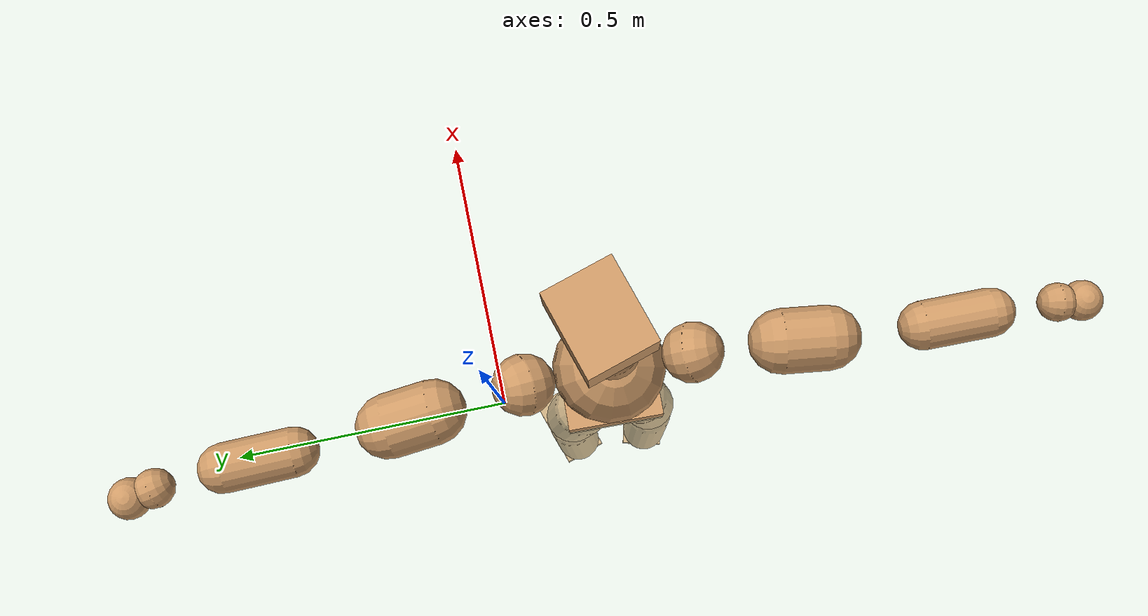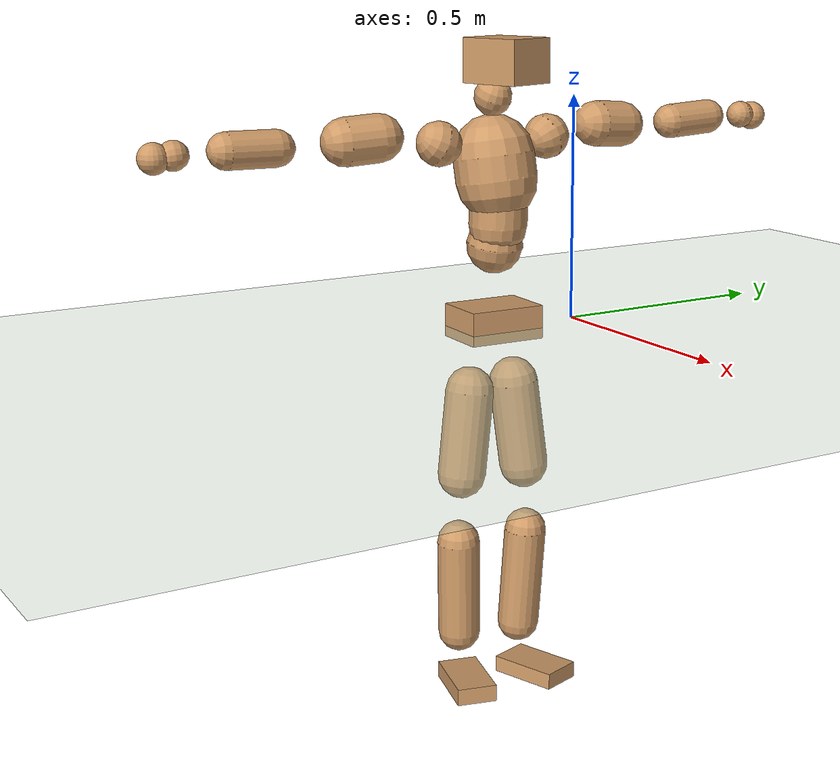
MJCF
<mujoco model="humanoid">
  <compiler coordinate="local" angle="radian"/>
  <default>
    <joint damping="0.0" armature="0.01" stiffness="0.0" limited="true"/>
    <geom conaffinity="1" condim="3" contype="7" margin="0.001" rgba="0.8 0.6 .4 1"/>
  </default>
  <asset>
    <texture type="skybox" builtin="gradient" rgb1=".4 .5 .6" rgb2="0 0 0" width="100" height="100"/>
    <texture builtin="flat" height="1278" mark="cross" markrgb="1 1 1" name="texgeom" random="0.01" rgb1="0.8 0.6 0.4" rgb2="0.8 0.6 0.4" type="cube" width="127"/>
    <texture builtin="checker" height="100" name="texplane" rgb1="0 0 0" rgb2="0.8 0.8 0.8" type="2d" width="100"/>
    <material name="MatPlane" reflectance="0.5" shininess="1" specular="1" texrepeat="60 60" texture="texplane"/>
    <material name="geom" texture="texgeom" texuniform="true"/>
  </asset>
  <worldbody>
    <light cutoff="100" diffuse="1 1 1" dir="-0 0 -1.3" directional="true" exponent="1" pos="0 0 1.3" specular=".1 .1 .1"/>
    <geom conaffinity="1" condim="3" name="floor" pos="0 0 0" rgba="0.8 0.9 0.8 1" size="100 100 .2" type="plane" material="MatPlane"/>
    <body name="Pelvis" pos="-0.0049 -0.1975 0.0191">
      <freejoint name="Pelvis"/>
      <geom type="box" contype="1" conaffinity="1" density="5359.375177" pos="-0.0111 0.0003 -0.0075" size="0.064 0.0878 0.0371" quat="0.9999 0.0000 0.0000 -0.0133" name="Pelvis"/>
      <body name="L_Hip" pos="-0.0216 0.0468 -0.0708">
        <joint name="L_Hip_x" type="hinge" pos="0 0 0" axis="1 0 0" stiffness="1600" damping="160" armature="0.02" range="-180.0000 180.0000"/>
        <joint name="L_Hip_y" type="hinge" pos="0 0 0" axis="0 1 0" stiffness="1600" damping="160" armature="0.02" range="-180.0000 180.0000"/>
        <joint name="L_Hip_z" type="hinge" pos="0 0 0" axis="0 0 1" stiffness="1600" damping="160" armature="0.02" range="-180.0000 180.0000"/>
        <geom type="capsule" contype="1" conaffinity="1" density="2040.816327" size="0.0549" fromto="0.0028 0.0103 -0.0842 0.0095 0.0343 -0.2818" name="L_Hip"/>
        <body name="L_Knee" pos="0.0123 0.0446 -0.3661">
          <joint name="L_Knee_x" type="hinge" pos="0 0 0" axis="1 0 0" stiffness="1600" damping="160" armature="0.02" range="-180.0000 180.0000"/>
          <joint name="L_Knee_y" type="hinge" pos="0 0 0" axis="0 1 0" stiffness="1600" damping="160" armature="0.02" range="-180.0000 180.0000"/>
          <joint name="L_Knee_z" type="hinge" pos="0 0 0" axis="0 0 1" stiffness="1600" damping="160" armature="0.02" range="-180.0000 180.0000"/>
          <geom type="capsule" contype="1" conaffinity="1" density="1234.567901" size="0.0478" fromto="-0.0060 -0.0023 -0.0776 -0.0241 -0.0092 -0.3110" name="L_Knee"/>
          <body name="L_Ankle" pos="-0.0301 -0.0115 -0.3885">
            <joint name="L_Ankle_x" type="hinge" pos="0 0 0" axis="1 0 0" stiffness="1600" damping="160" armature="0.02" range="-180.0000 180.0000"/>
            <joint name="L_Ankle_y" type="hinge" pos="0 0 0" axis="0 1 0" stiffness="1600" damping="160" armature="0.02" range="-180.0000 180.0000"/>
            <joint name="L_Ankle_z" type="hinge" pos="0 0 0" axis="0 0 1" stiffness="1600" damping="160" armature="0.02" range="-180.0000 180.0000"/>
            <geom type="box" contype="1" conaffinity="1" density="999.999992" pos="0.0551 0.0183 -0.0269" size="0.0805 0.0467 0.0185" quat="0.9872 0.0000 0.0000 0.1592" name="L_Ankle"/>
            <body name="L_Toe" pos="0.1102 0.0365 -0.0538">
              <joint name="L_Toe_x" type="hinge" pos="0 0 0" axis="1 0 0" stiffness="1000" damping="100" armature="0.02" range="-180.0000 180.0000"/>
              <joint name="L_Toe_y" type="hinge" pos="0 0 0" axis="0 1 0" stiffness="1000" damping="100" armature="0.02" range="-180.0000 180.0000"/>
              <joint name="L_Toe_z" type="hinge" pos="0 0 0" axis="0 0 1" stiffness="1000" damping="100" armature="0.02" range="-180.0000 180.0000"/>
              <geom type="box" contype="1" conaffinity="1" density="7972719.203645" pos="0.0000 0.0000 0.0262" size="0.001 0.0024 0.0009" quat="0.9864 0.0000 0.0000 0.1645" name="L_Toe"/>
            </body>
          </body>
        </body>
      </body>
      <body name="R_Hip" pos="-0.0185 -0.0487 -0.0782">
        <joint name="R_Hip_x" type="hinge" pos="0 0 0" axis="1 0 0" stiffness="1600" damping="160" armature="0.02" range="-180.0000 180.0000"/>
        <joint name="R_Hip_y" type="hinge" pos="0 0 0" axis="0 1 0" stiffness="1600" damping="160" armature="0.02" range="-180.0000 180.0000"/>
        <joint name="R_Hip_z" type="hinge" pos="0 0 0" axis="0 0 1" stiffness="1600" damping="160" armature="0.02" range="-180.0000 180.0000"/>
        <geom type="capsule" contype="1" conaffinity="1" density="2040.816327" size="0.0539" fromto="-0.0001 -0.0093 -0.0834 -0.0003 -0.0306 -0.2757" name="R_Hip"/>
        <body name="R_Knee" pos="-0.0004 -0.0399 -0.3591">
          <joint name="R_Knee_x" type="hinge" pos="0 0 0" axis="1 0 0" stiffness="1600" damping="160" armature="0.02" range="-180.0000 180.0000"/>
          <joint name="R_Knee_y" type="hinge" pos="0 0 0" axis="0 1 0" stiffness="1600" damping="160" armature="0.02" range="-180.0000 180.0000"/>
          <joint name="R_Knee_z" type="hinge" pos="0 0 0" axis="0 0 1" stiffness="1600" damping="160" armature="0.02" range="-180.0000 180.0000"/>
          <geom type="capsule" contype="1" conaffinity="1" density="1234.567901" size="0.0481" fromto="-0.0055 0.0035 -0.0779 -0.0216 0.0138 -0.3028" name="R_Knee"/>
          <body name="R_Ankle" pos="-0.0271 0.0173 -0.3806">
            <joint name="R_Ankle_x" type="hinge" pos="0 0 0" axis="1 0 0" stiffness="1600" damping="160" armature="0.02" range="-180.0000 180.0000"/>
            <joint name="R_Ankle_y" type="hinge" pos="0 0 0" axis="0 1 0" stiffness="1600" damping="160" armature="0.02" range="-180.0000 180.0000"/>
            <joint name="R_Ankle_z" type="hinge" pos="0 0 0" axis="0 0 1" stiffness="1600" damping="160" armature="0.02" range="-180.0000 180.0000"/>
            <geom type="box" contype="1" conaffinity="1" density="999.999948" pos="0.0586 -0.0145 -0.0282" size="0.0814 0.0452 0.0192" quat="0.9927 0.0000 0.0000 -0.1208" name="R_Ankle"/>
            <body name="R_Toe" pos="0.1172 -0.029 -0.0564">
              <joint name="R_Toe_x" type="hinge" pos="0 0 0" axis="1 0 0" stiffness="1000" damping="100" armature="0.02" range="-180.0000 180.0000"/>
              <joint name="R_Toe_y" type="hinge" pos="0 0 0" axis="0 1 0" stiffness="1000" damping="100" armature="0.02" range="-180.0000 180.0000"/>
              <joint name="R_Toe_z" type="hinge" pos="0 0 0" axis="0 0 1" stiffness="1000" damping="100" armature="0.02" range="-180.0000 180.0000"/>
              <geom type="box" contype="1" conaffinity="1" density="8639537.291052" pos="0.0000 0.0000 0.0293" size="0.0009 0.0023 0.001" quat="0.9938 0.0000 0.0000 -0.1110" name="R_Toe"/>
            </body>
          </body>
        </body>
      </body>
      <body name="Torso" pos="-0.0265 0.0037 0.1037">
        <joint name="Torso_x" type="hinge" pos="0 0 0" axis="1 0 0" stiffness="2000" damping="200" armature="0.02" range="-180.0000 180.0000"/>
        <joint name="Torso_y" type="hinge" pos="0 0 0" axis="0 1 0" stiffness="2000" damping="200" armature="0.02" range="-180.0000 180.0000"/>
        <joint name="Torso_z" type="hinge" pos="0 0 0" axis="0 0 1" stiffness="2000" damping="200" armature="0.02" range="-180.0000 180.0000"/>
        <geom type="capsule" contype="1" conaffinity="1" density="2040.816327" size="0.0625" fromto="0.0114 0.0017 0.0614 0.0108 0.0016 0.0581" name="Torso"/>
        <body name="Spine" pos="0.0222 0.0034 0.1195">
          <joint name="Spine_x" type="hinge" pos="0 0 0" axis="1 0 0" stiffness="2000" damping="200" armature="0.02" range="-180.0000 180.0000"/>
          <joint name="Spine_y" type="hinge" pos="0 0 0" axis="0 1 0" stiffness="2000" damping="200" armature="0.02" range="-180.0000 180.0000"/>
          <joint name="Spine_z" type="hinge" pos="0 0 0" axis="0 0 1" stiffness="2000" damping="200" armature="0.02" range="-180.0000 180.0000"/>
          <geom type="capsule" contype="1" conaffinity="1" density="2040.816327" size="0.0644" fromto="0.0030 -0.0000 0.0644 -0.0008 0.0000 -0.0168" name="Spine"/>
          <body name="Chest" pos="0.0022 0 0.0475">
            <joint name="Chest_x" type="hinge" pos="0 0 0" axis="1 0 0" stiffness="2000" damping="200" armature="0.02" range="-180.0000 180.0000"/>
            <joint name="Chest_y" type="hinge" pos="0 0 0" axis="0 1 0" stiffness="2000" damping="200" armature="0.02" range="-180.0000 180.0000"/>
            <joint name="Chest_z" type="hinge" pos="0 0 0" axis="0 0 1" stiffness="2000" damping="200" armature="0.02" range="-180.0000 180.0000"/>
            <geom type="capsule" contype="1" conaffinity="1" density="2040.816327" size="0.0895" fromto="-0.0117 -0.0061 0.0885 -0.0046 -0.0024 0.0345" name="Chest"/>
            <body name="Neck" pos="-0.0249 -0.0153 0.1765">
              <joint name="Neck_x" type="hinge" pos="0 0 0" axis="1 0 0" stiffness="1000" damping="100" armature="0.02" range="-180.0000 180.0000"/>
              <joint name="Neck_y" type="hinge" pos="0 0 0" axis="0 1 0" stiffness="1000" damping="100" armature="0.02" range="-180.0000 180.0000"/>
              <joint name="Neck_z" type="hinge" pos="0 0 0" axis="0 0 1" stiffness="1000" damping="100" armature="0.02" range="-180.0000 180.0000"/>
              <geom type="capsule" contype="1" conaffinity="1" density="1000" size="0.0411" fromto="0.0174 0.0048 0.0375 0.0182 0.0050 0.0393" name="Neck"/>
              <body name="Head" pos="0.0357 0.0098 0.0767">
                <joint name="Head_x" type="hinge" pos="0 0 0" axis="1 0 0" stiffness="1000" damping="100" armature="0.02" range="-180.0000 180.0000"/>
                <joint name="Head_y" type="hinge" pos="0 0 0" axis="0 1 0" stiffness="1000" damping="100" armature="0.02" range="-180.0000 180.0000"/>
                <joint name="Head_z" type="hinge" pos="0 0 0" axis="0 0 1" stiffness="1000" damping="100" armature="0.02" range="-180.0000 180.0000"/>
                <geom type="box" contype="1" conaffinity="1" density="2250.000043" pos="0.0188 0.0059 0.0394" size="0.0716 0.0587 0.0477" quat="0.9885 0.0000 0.0000 0.1512" name="Head"/>
              </body>
            </body>
            <body name="L_Thorax" pos="-0.0084 0.0715 0.0973">
              <joint name="L_Thorax_x" type="hinge" pos="0 0 0" axis="1 0 0" stiffness="1000" damping="100" armature="0.02" range="-180.0000 180.0000"/>
              <joint name="L_Thorax_y" type="hinge" pos="0 0 0" axis="0 1 0" stiffness="1000" damping="100" armature="0.02" range="-180.0000 180.0000"/>
              <joint name="L_Thorax_z" type="hinge" pos="0 0 0" axis="0 0 1" stiffness="1000" damping="100" armature="0.02" range="-180.0000 180.0000"/>
              <geom type="capsule" contype="1" conaffinity="1" density="1000" size="0.0494" fromto="-0.0079 0.0611 0.0233 -0.0081 0.0630 0.0240" name="L_Thorax"/>
              <body name="L_Shoulder" pos="-0.0159 0.1241 0.0473">
                <joint name="L_Shoulder_x" type="hinge" pos="0 0 0" axis="1 0 0" stiffness="1000" damping="100" armature="0.02" range="-720.0000 720.0000"/>
                <joint name="L_Shoulder_y" type="hinge" pos="0 0 0" axis="0 1 0" stiffness="1000" damping="100" armature="0.02" range="-720.0000 720.0000"/>
                <joint name="L_Shoulder_z" type="hinge" pos="0 0 0" axis="0 0 1" stiffness="1000" damping="100" armature="0.02" range="-720.0000 720.0000"/>
                <geom type="capsule" contype="1" conaffinity="1" density="1000" size="0.0514" fromto="-0.0075 0.0809 -0.0057 -0.0143 0.1540 -0.0108" name="L_Shoulder"/>
                <body name="L_Elbow" pos="-0.0218 0.2349 -0.0165">
                  <joint name="L_Elbow_x" type="hinge" pos="0 0 0" axis="1 0 0" stiffness="1000" damping="100" armature="0.02" range="-720.0000 720.0000"/>
                  <joint name="L_Elbow_y" type="hinge" pos="0 0 0" axis="0 1 0" stiffness="1000" damping="100" armature="0.02" range="-720.0000 720.0000"/>
                  <joint name="L_Elbow_z" type="hinge" pos="0 0 0" axis="0 0 1" stiffness="1000" damping="100" armature="0.02" range="-720.0000 720.0000"/>
                  <geom type="capsule" contype="1" conaffinity="1" density="1000" size="0.0393" fromto="-0.0019 0.0692 0.0031 -0.0049 0.1787 0.0081" name="L_Elbow"/>
                  <body name="L_Wrist" pos="-0.0068 0.2479 0.0112">
                    <joint name="L_Wrist_x" type="hinge" pos="0 0 0" axis="1 0 0" stiffness="600" damping="60" armature="0.02" range="-180.0000 180.0000"/>
                    <joint name="L_Wrist_y" type="hinge" pos="0 0 0" axis="0 1 0" stiffness="600" damping="60" armature="0.02" range="-180.0000 180.0000"/>
                    <joint name="L_Wrist_z" type="hinge" pos="0 0 0" axis="0 0 1" stiffness="600" damping="60" armature="0.02" range="-180.0000 180.0000"/>
                    <geom type="capsule" contype="1" conaffinity="1" density="1000" size="0.0311" fromto="-0.0070 0.0392 -0.0049 -0.0074 0.0411 -0.0051" name="L_Wrist"/>
                    <body name="L_Hand" pos="-0.0144 0.0803 -0.01">
                      <joint name="L_Hand_x" type="hinge" pos="0 0 0" axis="1 0 0" stiffness="600" damping="60" armature="0.02" range="-180.0000 180.0000"/>
                      <joint name="L_Hand_y" type="hinge" pos="0 0 0" axis="0 1 0" stiffness="600" damping="60" armature="0.02" range="-180.0000 180.0000"/>
                      <joint name="L_Hand_z" type="hinge" pos="0 0 0" axis="0 0 1" stiffness="600" damping="60" armature="0.02" range="-180.0000 180.0000"/>
                      <geom type="sphere" contype="1" conaffinity="1" density="1000" size="0.0328" pos="0.0000 0.0000 0.0000" name="L_Hand"/>
                    </body>
                  </body>
                </body>
              </body>
            </body>
            <body name="R_Thorax" pos="-0.0156 -0.0817 0.0952">
              <joint name="R_Thorax_x" type="hinge" pos="0 0 0" axis="1 0 0" stiffness="1000" damping="100" armature="0.02" range="-180.0000 180.0000"/>
              <joint name="R_Thorax_y" type="hinge" pos="0 0 0" axis="0 1 0" stiffness="1000" damping="100" armature="0.02" range="-180.0000 180.0000"/>
              <joint name="R_Thorax_z" type="hinge" pos="0 0 0" axis="0 0 1" stiffness="1000" damping="100" armature="0.02" range="-180.0000 180.0000"/>
              <geom type="capsule" contype="1" conaffinity="1" density="1000" size="0.0488" fromto="-0.0037 -0.0545 0.0242 -0.0038 -0.0563 0.0250" name="R_Thorax"/>
              <body name="R_Shoulder" pos="-0.0075 -0.1107 0.0493">
                <joint name="R_Shoulder_x" type="hinge" pos="0 0 0" axis="1 0 0" stiffness="1000" damping="100" armature="0.02" range="-720.0000 720.0000"/>
                <joint name="R_Shoulder_y" type="hinge" pos="0 0 0" axis="0 1 0" stiffness="1000" damping="100" armature="0.02" range="-720.0000 720.0000"/>
                <joint name="R_Shoulder_z" type="hinge" pos="0 0 0" axis="0 0 1" stiffness="1000" damping="100" armature="0.02" range="-720.0000 720.0000"/>
                <geom type="capsule" contype="1" conaffinity="1" density="1000" size="0.0516" fromto="-0.0096 -0.0809 -0.0054 -0.0185 -0.1561 -0.0104" name="R_Shoulder"/>
                <body name="R_Elbow" pos="-0.0281 -0.237 -0.0158">
                  <joint name="R_Elbow_x" type="hinge" pos="0 0 0" axis="1 0 0" stiffness="1000" damping="100" armature="0.02" range="-720.0000 720.0000"/>
                  <joint name="R_Elbow_y" type="hinge" pos="0 0 0" axis="0 1 0" stiffness="1000" damping="100" armature="0.02" range="-720.0000 720.0000"/>
                  <joint name="R_Elbow_z" type="hinge" pos="0 0 0" axis="0 0 1" stiffness="1000" damping="100" armature="0.02" range="-720.0000 720.0000"/>
                  <geom type="capsule" contype="1" conaffinity="1" density="1000" size="0.0392" fromto="-0.0008 -0.0692 0.0009 -0.0020 -0.1777 0.0022" name="R_Elbow"/>
                  <body name="R_Wrist" pos="-0.0027 -0.2468 0.0031">
                    <joint name="R_Wrist_x" type="hinge" pos="0 0 0" axis="1 0 0" stiffness="600" damping="60" armature="0.02" range="-180.0000 180.0000"/>
                    <joint name="R_Wrist_y" type="hinge" pos="0 0 0" axis="0 1 0" stiffness="600" damping="60" armature="0.02" range="-180.0000 180.0000"/>
                    <joint name="R_Wrist_z" type="hinge" pos="0 0 0" axis="0 0 1" stiffness="600" damping="60" armature="0.02" range="-180.0000 180.0000"/>
                    <geom type="capsule" contype="1" conaffinity="1" density="1000" size="0.0308" fromto="-0.0046 -0.0389 -0.0038 -0.0049 -0.0409 -0.0040" name="R_Wrist"/>
                    <body name="R_Hand" pos="-0.0095 -0.0798 -0.0078">
                      <joint name="R_Hand_x" type="hinge" pos="0 0 0" axis="1 0 0" stiffness="600" damping="60" armature="0.02" range="-180.0000 180.0000"/>
                      <joint name="R_Hand_y" type="hinge" pos="0 0 0" axis="0 1 0" stiffness="600" damping="60" armature="0.02" range="-180.0000 180.0000"/>
                      <joint name="R_Hand_z" type="hinge" pos="0 0 0" axis="0 0 1" stiffness="600" damping="60" armature="0.02" range="-180.0000 180.0000"/>
                      <geom type="sphere" contype="1" conaffinity="1" density="1000" size="0.0323" pos="0.0000 0.0000 0.0000" name="R_Hand"/>
                    </body>
                  </body>
                </body>
              </body>
            </body>
          </body>
        </body>
      </body>
    </body>
  </worldbody>
  <actuator>
    <motor name="L_Hip_x" joint="L_Hip_x" gear="500"/>
    <motor name="L_Hip_y" joint="L_Hip_y" gear="500"/>
    <motor name="L_Hip_z" joint="L_Hip_z" gear="500"/>
    <motor name="L_Knee_x" joint="L_Knee_x" gear="500"/>
    <motor name="L_Knee_y" joint="L_Knee_y" gear="500"/>
    <motor name="L_Knee_z" joint="L_Knee_z" gear="500"/>
    <motor name="L_Ankle_x" joint="L_Ankle_x" gear="500"/>
    <motor name="L_Ankle_y" joint="L_Ankle_y" gear="500"/>
    <motor name="L_Ankle_z" joint="L_Ankle_z" gear="500"/>
    <motor name="L_Toe_x" joint="L_Toe_x" gear="500"/>
    <motor name="L_Toe_y" joint="L_Toe_y" gear="500"/>
    <motor name="L_Toe_z" joint="L_Toe_z" gear="500"/>
    <motor name="R_Hip_x" joint="R_Hip_x" gear="500"/>
    <motor name="R_Hip_y" joint="R_Hip_y" gear="500"/>
    <motor name="R_Hip_z" joint="R_Hip_z" gear="500"/>
    <motor name="R_Knee_x" joint="R_Knee_x" gear="500"/>
    <motor name="R_Knee_y" joint="R_Knee_y" gear="500"/>
    <motor name="R_Knee_z" joint="R_Knee_z" gear="500"/>
    <motor name="R_Ankle_x" joint="R_Ankle_x" gear="500"/>
    <motor name="R_Ankle_y" joint="R_Ankle_y" gear="500"/>
    <motor name="R_Ankle_z" joint="R_Ankle_z" gear="500"/>
    <motor name="R_Toe_x" joint="R_Toe_x" gear="500"/>
    <motor name="R_Toe_y" joint="R_Toe_y" gear="500"/>
    <motor name="R_Toe_z" joint="R_Toe_z" gear="500"/>
    <motor name="Torso_x" joint="Torso_x" gear="500"/>
    <motor name="Torso_y" joint="Torso_y" gear="500"/>
    <motor name="Torso_z" joint="Torso_z" gear="500"/>
    <motor name="Spine_x" joint="Spine_x" gear="500"/>
    <motor name="Spine_y" joint="Spine_y" gear="500"/>
    <motor name="Spine_z" joint="Spine_z" gear="500"/>
    <motor name="Chest_x" joint="Chest_x" gear="500"/>
    <motor name="Chest_y" joint="Chest_y" gear="500"/>
    <motor name="Chest_z" joint="Chest_z" gear="500"/>
    <motor name="Neck_x" joint="Neck_x" gear="500"/>
    <motor name="Neck_y" joint="Neck_y" gear="500"/>
    <motor name="Neck_z" joint="Neck_z" gear="500"/>
    <motor name="Head_x" joint="Head_x" gear="500"/>
    <motor name="Head_y" joint="Head_y" gear="500"/>
    <motor name="Head_z" joint="Head_z" gear="500"/>
    <motor name="L_Thorax_x" joint="L_Thorax_x" gear="500"/>
    <motor name="L_Thorax_y" joint="L_Thorax_y" gear="500"/>
    <motor name="L_Thorax_z" joint="L_Thorax_z" gear="500"/>
    <motor name="L_Shoulder_x" joint="L_Shoulder_x" gear="500"/>
    <motor name="L_Shoulder_y" joint="L_Shoulder_y" gear="500"/>
    <motor name="L_Shoulder_z" joint="L_Shoulder_z" gear="500"/>
    <motor name="L_Elbow_x" joint="L_Elbow_x" gear="500"/>
    <motor name="L_Elbow_y" joint="L_Elbow_y" gear="500"/>
    <motor name="L_Elbow_z" joint="L_Elbow_z" gear="500"/>
    <motor name="L_Wrist_x" joint="L_Wrist_x" gear="500"/>
    <motor name="L_Wrist_y" joint="L_Wrist_y" gear="500"/>
    <motor name="L_Wrist_z" joint="L_Wrist_z" gear="500"/>
    <motor name="L_Hand_x" joint="L_Hand_x" gear="500"/>
    <motor name="L_Hand_y" joint="L_Hand_y" gear="500"/>
    <motor name="L_Hand_z" joint="L_Hand_z" gear="500"/>
    <motor name="R_Thorax_x" joint="R_Thorax_x" gear="500"/>
    <motor name="R_Thorax_y" joint="R_Thorax_y" gear="500"/>
    <motor name="R_Thorax_z" joint="R_Thorax_z" gear="500"/>
    <motor name="R_Shoulder_x" joint="R_Shoulder_x" gear="500"/>
    <motor name="R_Shoulder_y" joint="R_Shoulder_y" gear="500"/>
    <motor name="R_Shoulder_z" joint="R_Shoulder_z" gear="500"/>
    <motor name="R_Elbow_x" joint="R_Elbow_x" gear="500"/>
    <motor name="R_Elbow_y" joint="R_Elbow_y" gear="500"/>
    <motor name="R_Elbow_z" joint="R_Elbow_z" gear="500"/>
    <motor name="R_Wrist_x" joint="R_Wrist_x" gear="500"/>
    <motor name="R_Wrist_y" joint="R_Wrist_y" gear="500"/>
    <motor name="R_Wrist_z" joint="R_Wrist_z" gear="500"/>
    <motor name="R_Hand_x" joint="R_Hand_x" gear="500"/>
    <motor name="R_Hand_y" joint="R_Hand_y" gear="500"/>
    <motor name="R_Hand_z" joint="R_Hand_z" gear="500"/>
  </actuator>
  <contact>
    <exclude body1="Torso" body2="Chest"/>
    <exclude body1="Head" body2="Chest"/>
    <exclude body1="R_Knee" body2="R_Toe"/>
    <exclude body1="R_Knee" body2="L_Ankle"/>
    <exclude body1="R_Knee" body2="L_Toe"/>
    <exclude body1="L_Knee" body2="L_Toe"/>
    <exclude body1="L_Knee" body2="R_Ankle"/>
    <exclude body1="L_Knee" body2="R_Toe"/>
    <exclude body1="L_Shoulder" body2="Chest"/>
    <exclude body1="R_Shoulder" body2="Chest"/>
  </contact>
  <sensor/>
  <size njmax="700" nconmax="700"/>
</mujoco>
